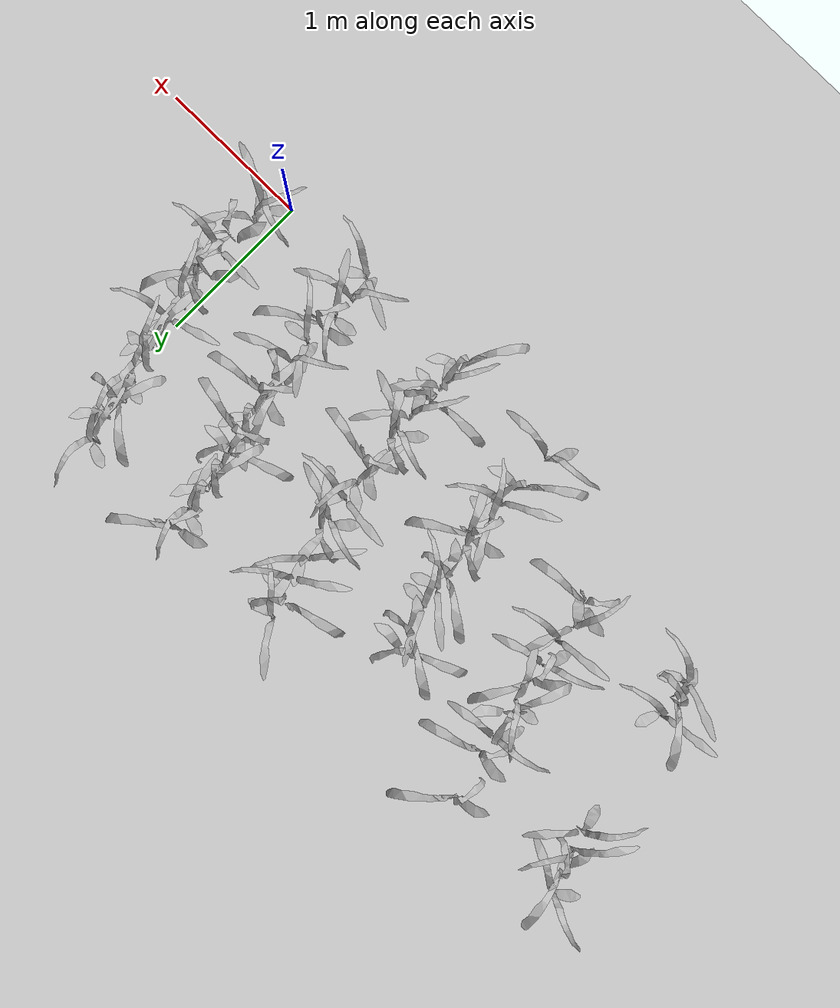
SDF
<sdf version="1.7">
 <world name="default">
  <model name="maize_02_0037">
   <pose>-3.66027 0.410487 -0.000245 1.4e-05 -1.2e-05 -1.38058</pose>
   <link name="maize_02_link">
    <inertial>
     <pose>0 0 0.01 0 -0 0</pose>
     <mass>0.3</mass>
     <inertia>
      <ixx>0.00334167</ixx>
      <ixy>0</ixy>
      <ixz>0</ixz>
      <iyy>0.00334167</iyy>
      <iyz>0</iyz>
      <izz>1.66667e-05</izz>
     </inertia>
     <pose>0 0 0.1 0 -0 0</pose>
    </inertial>
    <visual name="visual">
     <geometry>
      <mesh><uri>model://maize_02/meshes/maize_02.dae</uri><scale>0.683166 0.683166 0.683166</scale></mesh>
     </geometry>
    </visual>
   </link>
   <static>0</static>
  </model>
  <model name="maize_01_0038">
   <pose>-3.68555 0.516604 -0 -5e-06 -2.8e-05 2.98925</pose>
   <link name="maize_01_link">
    <inertial>
     <pose>0 0 0.01 0 -0 0</pose>
     <mass>0.3</mass>
     <inertia>
      <ixx>0.00334167</ixx>
      <ixy>0</ixy>
      <ixz>0</ixz>
      <iyy>0.00334167</iyy>
      <iyz>0</iyz>
      <izz>1.66667e-05</izz>
     </inertia>
     <pose>0 0 0.1 0 -0 0</pose>
    </inertial>
    <visual name="visual">
     <geometry>
      <mesh><uri>model://maize_01/meshes/maize_01.dae</uri><scale>0.683166 0.683166 0.683166</scale></mesh>
     </geometry>
    </visual>
   </link>
   <static>0</static>
  </model>
  <model name="maize_02_0039">
   <pose>-3.70169 0.643585 -0 -5e-06 -2.8e-05 -0.865449</pose>
   <link name="maize_02_link">
    <inertial>
     <pose>0 0 0.01 0 -0 0</pose>
     <mass>0.3</mass>
     <inertia>
      <ixx>0.00334167</ixx>
      <ixy>0</ixy>
      <ixz>0</ixz>
      <iyy>0.00334167</iyy>
      <iyz>0</iyz>
      <izz>1.66667e-05</izz>
     </inertia>
     <pose>0 0 0.1 0 -0 0</pose>
    </inertial>
    <visual name="visual">
     <geometry>
      <mesh><uri>model://maize_02/meshes/maize_02.dae</uri><scale>0.683166 0.683166 0.683166</scale></mesh>
     </geometry>
    </visual>
   </link>
   <static>0</static>
  </model>
  <model name="maize_02_0040">
   <pose>-3.81636 1.45517 -1e-06 6e-06 -8.3e-05 2.98124</pose>
   <link name="maize_02_link">
    <inertial>
     <pose>0 0 0.01 0 -0 0</pose>
     <mass>0.3</mass>
     <inertia>
      <ixx>0.00334167</ixx>
      <ixy>0</ixy>
      <ixz>0</ixz>
      <iyy>0.00334167</iyy>
      <iyz>0</iyz>
      <izz>1.66667e-05</izz>
     </inertia>
     <pose>0 0 0.1 0 -0 0</pose>
    </inertial>
    <visual name="visual">
     <geometry>
      <mesh><uri>model://maize_02/meshes/maize_02.dae</uri><scale>0.683166 0.683166 0.683166</scale></mesh>
     </geometry>
    </visual>
   </link>
   <static>0</static>
  </model>
  <model name="maize_02_0041">
   <pose>-3.86791 1.56843 -0 -5e-06 -2.8e-05 -0.060182</pose>
   <link name="maize_02_link">
    <inertial>
     <pose>0 0 0.01 0 -0 0</pose>
     <mass>0.3</mass>
     <inertia>
      <ixx>0.00334167</ixx>
      <ixy>0</ixy>
      <ixz>0</ixz>
      <iyy>0.00334167</iyy>
      <iyz>0</iyz>
      <izz>1.66667e-05</izz>
     </inertia>
     <pose>0 0 0.1 0 -0 0</pose>
    </inertial>
    <visual name="visual">
     <geometry>
      <mesh><uri>model://maize_02/meshes/maize_02.dae</uri><scale>0.683166 0.683166 0.683166</scale></mesh>
     </geometry>
    </visual>
   </link>
   <static>0</static>
  </model>
  <model name="maize_01_0042">
   <pose>-3.88179 1.68025 -0 5e-06 2.8e-05 2.52057</pose>
   <link name="maize_01_link">
    <inertial>
     <pose>0 0 0.01 0 -0 0</pose>
     <mass>0.3</mass>
     <inertia>
      <ixx>0.00334167</ixx>
      <ixy>0</ixy>
      <ixz>0</ixz>
      <iyy>0.00334167</iyy>
      <iyz>0</iyz>
      <izz>1.66667e-05</izz>
     </inertia>
     <pose>0 0 0.1 0 -0 0</pose>
    </inertial>
    <visual name="visual">
     <geometry>
      <mesh><uri>model://maize_01/meshes/maize_01.dae</uri><scale>0.683166 0.683166 0.683166</scale></mesh>
     </geometry>
    </visual>
   </link>
   <static>0</static>
  </model>
  <model name="maize_02_0043">
   <pose>-3.91967 1.8181 -1e-06 6e-06 -8.9e-05 1.71097</pose>
   <link name="maize_02_link">
    <inertial>
     <pose>0 0 0.01 0 -0 0</pose>
     <mass>0.3</mass>
     <inertia>
      <ixx>0.00334167</ixx>
      <ixy>0</ixy>
      <ixz>0</ixz>
      <iyy>0.00334167</iyy>
      <iyz>0</iyz>
      <izz>1.66667e-05</izz>
     </inertia>
     <pose>0 0 0.1 0 -0 0</pose>
    </inertial>
    <visual name="visual">
     <geometry>
      <mesh><uri>model://maize_02/meshes/maize_02.dae</uri><scale>0.683166 0.683166 0.683166</scale></mesh>
     </geometry>
    </visual>
   </link>
   <static>0</static>
  </model>
  <model name="maize_01_0093">
   <pose>-2.93056 0.493052 -0 2.8e-05 5e-06 0.88541</pose>
   <link name="maize_01_link">
    <inertial>
     <pose>0 0 0.01 0 -0 0</pose>
     <mass>0.3</mass>
     <inertia>
      <ixx>0.00334167</ixx>
      <ixy>0</ixy>
      <ixz>0</ixz>
      <iyy>0.00334167</iyy>
      <iyz>0</iyz>
      <izz>1.66667e-05</izz>
     </inertia>
     <pose>0 0 0.1 0 -0 0</pose>
    </inertial>
    <visual name="visual">
     <geometry>
      <mesh><uri>model://maize_01/meshes/maize_01.dae</uri><scale>0.683166 0.683166 0.683166</scale></mesh>
     </geometry>
    </visual>
   </link>
   <static>0</static>
  </model>
  <model name="maize_02_0094">
   <pose>-2.96289 0.639365 -0 -5e-06 2.8e-05 -2.89464</pose>
   <link name="maize_02_link">
    <inertial>
     <pose>0 0 0.01 0 -0 0</pose>
     <mass>0.3</mass>
     <inertia>
      <ixx>0.00334167</ixx>
      <ixy>0</ixy>
      <ixz>0</ixz>
      <iyy>0.00334167</iyy>
      <iyz>0</iyz>
      <izz>1.66667e-05</izz>
     </inertia>
     <pose>0 0 0.1 0 -0 0</pose>
    </inertial>
    <visual name="visual">
     <geometry>
      <mesh><uri>model://maize_02/meshes/maize_02.dae</uri><scale>0.683166 0.683166 0.683166</scale></mesh>
     </geometry>
    </visual>
   </link>
   <static>0</static>
  </model>
  <model name="maize_02_0095">
   <pose>-2.95871 0.760134 1e-06 3e-06 0.000156 -0.87129</pose>
   <link name="maize_02_link">
    <inertial>
     <pose>0 0 0.01 0 -0 0</pose>
     <mass>0.3</mass>
     <inertia>
      <ixx>0.00334167</ixx>
      <ixy>0</ixy>
      <ixz>0</ixz>
      <iyy>0.00334167</iyy>
      <iyz>0</iyz>
      <izz>1.66667e-05</izz>
     </inertia>
     <pose>0 0 0.1 0 -0 0</pose>
    </inertial>
    <visual name="visual">
     <geometry>
      <mesh><uri>model://maize_02/meshes/maize_02.dae</uri><scale>0.683166 0.683166 0.683166</scale></mesh>
     </geometry>
    </visual>
   </link>
   <static>0</static>
  </model>
  <model name="maize_02_0096">
   <pose>-2.99314 0.916088 -1e-06 8.9e-05 -6e-06 2.45607</pose>
   <link name="maize_02_link">
    <inertial>
     <pose>0 0 0.01 0 -0 0</pose>
     <mass>0.3</mass>
     <inertia>
      <ixx>0.00334167</ixx>
      <ixy>0</ixy>
      <ixz>0</ixz>
      <iyy>0.00334167</iyy>
      <iyz>0</iyz>
      <izz>1.66667e-05</izz>
     </inertia>
     <pose>0 0 0.1 0 -0 0</pose>
    </inertial>
    <visual name="visual">
     <geometry>
      <mesh><uri>model://maize_02/meshes/maize_02.dae</uri><scale>0.683166 0.683166 0.683166</scale></mesh>
     </geometry>
    </visual>
   </link>
   <static>0</static>
  </model>
  <model name="maize_01_0097">
   <pose>-3.02066 1.01691 -1e-06 8.9e-05 6e-06 1.8454</pose>
   <link name="maize_01_link">
    <inertial>
     <pose>0 0 0.01 0 -0 0</pose>
     <mass>0.3</mass>
     <inertia>
      <ixx>0.00334167</ixx>
      <ixy>0</ixy>
      <ixz>0</ixz>
      <iyy>0.00334167</iyy>
      <iyz>0</iyz>
      <izz>1.66667e-05</izz>
     </inertia>
     <pose>0 0 0.1 0 -0 0</pose>
    </inertial>
    <visual name="visual">
     <geometry>
      <mesh><uri>model://maize_01/meshes/maize_01.dae</uri><scale>0.683166 0.683166 0.683166</scale></mesh>
     </geometry>
    </visual>
   </link>
   <static>0</static>
  </model>
  <model name="maize_02_0098">
   <pose>-3.02673 1.17492 -1e-06 6e-06 -8.3e-05 1.11427</pose>
   <link name="maize_02_link">
    <inertial>
     <pose>0 0 0.01 0 -0 0</pose>
     <mass>0.3</mass>
     <inertia>
      <ixx>0.00334167</ixx>
      <ixy>0</ixy>
      <ixz>0</ixz>
      <iyy>0.00334167</iyy>
      <iyz>0</iyz>
      <izz>1.66667e-05</izz>
     </inertia>
     <pose>0 0 0.1 0 -0 0</pose>
    </inertial>
    <visual name="visual">
     <geometry>
      <mesh><uri>model://maize_02/meshes/maize_02.dae</uri><scale>0.683166 0.683166 0.683166</scale></mesh>
     </geometry>
    </visual>
   </link>
   <static>0</static>
  </model>
  <model name="maize_01_0099">
   <pose>-3.03337 1.28259 -0.000245 -1.2e-05 1.4e-05 -1.16432</pose>
   <link name="maize_01_link">
    <inertial>
     <pose>0 0 0.01 0 -0 0</pose>
     <mass>0.3</mass>
     <inertia>
      <ixx>0.00334167</ixx>
      <ixy>0</ixy>
      <ixz>0</ixz>
      <iyy>0.00334167</iyy>
      <iyz>0</iyz>
      <izz>1.66667e-05</izz>
     </inertia>
     <pose>0 0 0.1 0 -0 0</pose>
    </inertial>
    <visual name="visual">
     <geometry>
      <mesh><uri>model://maize_01/meshes/maize_01.dae</uri><scale>0.683166 0.683166 0.683166</scale></mesh>
     </geometry>
    </visual>
   </link>
   <static>0</static>
  </model>
  <model name="maize_02_0100">
   <pose>-3.08329 1.42152 -0 -5e-06 -2.8e-05 2.30613</pose>
   <link name="maize_02_link">
    <inertial>
     <pose>0 0 0.01 0 -0 0</pose>
     <mass>0.3</mass>
     <inertia>
      <ixx>0.00334167</ixx>
      <ixy>0</ixy>
      <ixz>0</ixz>
      <iyy>0.00334167</iyy>
      <iyz>0</iyz>
      <izz>1.66667e-05</izz>
     </inertia>
     <pose>0 0 0.1 0 -0 0</pose>
    </inertial>
    <visual name="visual">
     <geometry>
      <mesh><uri>model://maize_02/meshes/maize_02.dae</uri><scale>0.683166 0.683166 0.683166</scale></mesh>
     </geometry>
    </visual>
   </link>
   <static>0</static>
  </model>
  <model name="maize_01_0101">
   <pose>-3.09985 1.53604 -0 2.8e-05 5e-06 1.07932</pose>
   <link name="maize_01_link">
    <inertial>
     <pose>0 0 0.01 0 -0 0</pose>
     <mass>0.3</mass>
     <inertia>
      <ixx>0.00334167</ixx>
      <ixy>0</ixy>
      <ixz>0</ixz>
      <iyy>0.00334167</iyy>
      <iyz>0</iyz>
      <izz>1.66667e-05</izz>
     </inertia>
     <pose>0 0 0.1 0 -0 0</pose>
    </inertial>
    <visual name="visual">
     <geometry>
      <mesh><uri>model://maize_01/meshes/maize_01.dae</uri><scale>0.683166 0.683166 0.683166</scale></mesh>
     </geometry>
    </visual>
   </link>
   <static>0</static>
  </model>
  <model name="maize_01_0102">
   <pose>-3.1717 1.82014 -1e-06 6e-06 -7.9e-05 1.47643</pose>
   <link name="maize_01_link">
    <inertial>
     <pose>0 0 0.01 0 -0 0</pose>
     <mass>0.3</mass>
     <inertia>
      <ixx>0.00334167</ixx>
      <ixy>0</ixy>
      <ixz>0</ixz>
      <iyy>0.00334167</iyy>
      <iyz>0</iyz>
      <izz>1.66667e-05</izz>
     </inertia>
     <pose>0 0 0.1 0 -0 0</pose>
    </inertial>
    <visual name="visual">
     <geometry>
      <mesh><uri>model://maize_01/meshes/maize_01.dae</uri><scale>0.683166 0.683166 0.683166</scale></mesh>
     </geometry>
    </visual>
   </link>
   <static>0</static>
  </model>
  <model name="maize_02_0143">
   <pose>-2.16256 0.024378 -0 -5e-06 -2.8e-05 2.18611</pose>
   <link name="maize_02_link">
    <inertial>
     <pose>0 0 0.01 0 -0 0</pose>
     <mass>0.3</mass>
     <inertia>
      <ixx>0.00334167</ixx>
      <ixy>0</ixy>
      <ixz>0</ixz>
      <iyy>0.00334167</iyy>
      <iyz>0</iyz>
      <izz>1.66667e-05</izz>
     </inertia>
     <pose>0 0 0.1 0 -0 0</pose>
    </inertial>
    <visual name="visual">
     <geometry>
      <mesh><uri>model://maize_02/meshes/maize_02.dae</uri><scale>0.683166 0.683166 0.683166</scale></mesh>
     </geometry>
    </visual>
   </link>
   <static>0</static>
  </model>
  <model name="maize_01_0144">
   <pose>-2.15626 0.281954 -1e-06 -6e-06 -8.9e-05 -1.73536</pose>
   <link name="maize_01_link">
    <inertial>
     <pose>0 0 0.01 0 -0 0</pose>
     <mass>0.3</mass>
     <inertia>
      <ixx>0.00334167</ixx>
      <ixy>0</ixy>
      <ixz>0</ixz>
      <iyy>0.00334167</iyy>
      <iyz>0</iyz>
      <izz>1.66667e-05</izz>
     </inertia>
     <pose>0 0 0.1 0 -0 0</pose>
    </inertial>
    <visual name="visual">
     <geometry>
      <mesh><uri>model://maize_01/meshes/maize_01.dae</uri><scale>0.683166 0.683166 0.683166</scale></mesh>
     </geometry>
    </visual>
   </link>
   <static>0</static>
  </model>
  <model name="maize_02_0145">
   <pose>-2.15983 0.413186 -0 -4.8e-05 6e-06 -0.513506</pose>
   <link name="maize_02_link">
    <inertial>
     <pose>0 0 0.01 0 -0 0</pose>
     <mass>0.3</mass>
     <inertia>
      <ixx>0.00334167</ixx>
      <ixy>0</ixy>
      <ixz>0</ixz>
      <iyy>0.00334167</iyy>
      <iyz>0</iyz>
      <izz>1.66667e-05</izz>
     </inertia>
     <pose>0 0 0.1 0 -0 0</pose>
    </inertial>
    <visual name="visual">
     <geometry>
      <mesh><uri>model://maize_02/meshes/maize_02.dae</uri><scale>0.683166 0.683166 0.683166</scale></mesh>
     </geometry>
    </visual>
   </link>
   <static>0</static>
  </model>
  <model name="maize_02_0146">
   <pose>-2.17793 0.537337 1e-06 -0.000156 3e-06 -2.04433</pose>
   <link name="maize_02_link">
    <inertial>
     <pose>0 0 0.01 0 -0 0</pose>
     <mass>0.3</mass>
     <inertia>
      <ixx>0.00334167</ixx>
      <ixy>0</ixy>
      <ixz>0</ixz>
      <iyy>0.00334167</iyy>
      <iyz>0</iyz>
      <izz>1.66667e-05</izz>
     </inertia>
     <pose>0 0 0.1 0 -0 0</pose>
    </inertial>
    <visual name="visual">
     <geometry>
      <mesh><uri>model://maize_02/meshes/maize_02.dae</uri><scale>0.683166 0.683166 0.683166</scale></mesh>
     </geometry>
    </visual>
   </link>
   <static>0</static>
  </model>
  <model name="maize_01_0147">
   <pose>-2.1831 0.662623 -0.000245 1.2e-05 -1.4e-05 1.36303</pose>
   <link name="maize_01_link">
    <inertial>
     <pose>0 0 0.01 0 -0 0</pose>
     <mass>0.3</mass>
     <inertia>
      <ixx>0.00334167</ixx>
      <ixy>0</ixy>
      <ixz>0</ixz>
      <iyy>0.00334167</iyy>
      <iyz>0</iyz>
      <izz>1.66667e-05</izz>
     </inertia>
     <pose>0 0 0.1 0 -0 0</pose>
    </inertial>
    <visual name="visual">
     <geometry>
      <mesh><uri>model://maize_01/meshes/maize_01.dae</uri><scale>0.683166 0.683166 0.683166</scale></mesh>
     </geometry>
    </visual>
   </link>
   <static>0</static>
  </model>
  <model name="maize_01_0148">
   <pose>-2.20458 0.781522 1e-06 -3e-06 -0.000156 -0.322041</pose>
   <link name="maize_01_link">
    <inertial>
     <pose>0 0 0.01 0 -0 0</pose>
     <mass>0.3</mass>
     <inertia>
      <ixx>0.00334167</ixx>
      <ixy>0</ixy>
      <ixz>0</ixz>
      <iyy>0.00334167</iyy>
      <iyz>0</iyz>
      <izz>1.66667e-05</izz>
     </inertia>
     <pose>0 0 0.1 0 -0 0</pose>
    </inertial>
    <visual name="visual">
     <geometry>
      <mesh><uri>model://maize_01/meshes/maize_01.dae</uri><scale>0.683166 0.683166 0.683166</scale></mesh>
     </geometry>
    </visual>
   </link>
   <static>0</static>
  </model>
  <model name="maize_01_0149">
   <pose>-2.21857 0.932793 -0.000245 1.4e-05 -1.2e-05 -2.96804</pose>
   <link name="maize_01_link">
    <inertial>
     <pose>0 0 0.01 0 -0 0</pose>
     <mass>0.3</mass>
     <inertia>
      <ixx>0.00334167</ixx>
      <ixy>0</ixy>
      <ixz>0</ixz>
      <iyy>0.00334167</iyy>
      <iyz>0</iyz>
      <izz>1.66667e-05</izz>
     </inertia>
     <pose>0 0 0.1 0 -0 0</pose>
    </inertial>
    <visual name="visual">
     <geometry>
      <mesh><uri>model://maize_01/meshes/maize_01.dae</uri><scale>0.683166 0.683166 0.683166</scale></mesh>
     </geometry>
    </visual>
   </link>
   <static>0</static>
  </model>
  <model name="maize_02_0150">
   <pose>-2.24388 1.0459 -1e-06 -6e-06 8.9e-05 -1.68531</pose>
   <link name="maize_02_link">
    <inertial>
     <pose>0 0 0.01 0 -0 0</pose>
     <mass>0.3</mass>
     <inertia>
      <ixx>0.00334167</ixx>
      <ixy>0</ixy>
      <ixz>0</ixz>
      <iyy>0.00334167</iyy>
      <iyz>0</iyz>
      <izz>1.66667e-05</izz>
     </inertia>
     <pose>0 0 0.1 0 -0 0</pose>
    </inertial>
    <visual name="visual">
     <geometry>
      <mesh><uri>model://maize_02/meshes/maize_02.dae</uri><scale>0.683166 0.683166 0.683166</scale></mesh>
     </geometry>
    </visual>
   </link>
   <static>0</static>
  </model>
  <model name="maize_02_0151">
   <pose>-2.25707 1.17896 -1e-06 6e-06 7.9e-05 -2.07257</pose>
   <link name="maize_02_link">
    <inertial>
     <pose>0 0 0.01 0 -0 0</pose>
     <mass>0.3</mass>
     <inertia>
      <ixx>0.00334167</ixx>
      <ixy>0</ixy>
      <ixz>0</ixz>
      <iyy>0.00334167</iyy>
      <iyz>0</iyz>
      <izz>1.66667e-05</izz>
     </inertia>
     <pose>0 0 0.1 0 -0 0</pose>
    </inertial>
    <visual name="visual">
     <geometry>
      <mesh><uri>model://maize_02/meshes/maize_02.dae</uri><scale>0.683166 0.683166 0.683166</scale></mesh>
     </geometry>
    </visual>
   </link>
   <static>0</static>
  </model>
  <model name="maize_01_0152">
   <pose>-2.29463 1.32279 1e-06 -0.000156 3e-06 -2.91684</pose>
   <link name="maize_01_link">
    <inertial>
     <pose>0 0 0.01 0 -0 0</pose>
     <mass>0.3</mass>
     <inertia>
      <ixx>0.00334167</ixx>
      <ixy>0</ixy>
      <ixz>0</ixz>
      <iyy>0.00334167</iyy>
      <iyz>0</iyz>
      <izz>1.66667e-05</izz>
     </inertia>
     <pose>0 0 0.1 0 -0 0</pose>
    </inertial>
    <visual name="visual">
     <geometry>
      <mesh><uri>model://maize_01/meshes/maize_01.dae</uri><scale>0.683166 0.683166 0.683166</scale></mesh>
     </geometry>
    </visual>
   </link>
   <static>0</static>
  </model>
  <model name="maize_01_0153">
   <pose>-2.32665 1.4433 -0 -2.8e-05 -5e-06 -1.94214</pose>
   <link name="maize_01_link">
    <inertial>
     <pose>0 0 0.01 0 -0 0</pose>
     <mass>0.3</mass>
     <inertia>
      <ixx>0.00334167</ixx>
      <ixy>0</ixy>
      <ixz>0</ixz>
      <iyy>0.00334167</iyy>
      <iyz>0</iyz>
      <izz>1.66667e-05</izz>
     </inertia>
     <pose>0 0 0.1 0 -0 0</pose>
    </inertial>
    <visual name="visual">
     <geometry>
      <mesh><uri>model://maize_01/meshes/maize_01.dae</uri><scale>0.683166 0.683166 0.683166</scale></mesh>
     </geometry>
    </visual>
   </link>
   <static>0</static>
  </model>
  <model name="maize_01_0210">
   <pose>-1.41972 0.002456 -0 2.8e-05 5e-06 -1.34326</pose>
   <link name="maize_01_link">
    <inertial>
     <pose>0 0 0.01 0 -0 0</pose>
     <mass>0.3</mass>
     <inertia>
      <ixx>0.00334167</ixx>
      <ixy>0</ixy>
      <ixz>0</ixz>
      <iyy>0.00334167</iyy>
      <iyz>0</iyz>
      <izz>1.66667e-05</izz>
     </inertia>
     <pose>0 0 0.1 0 -0 0</pose>
    </inertial>
    <visual name="visual">
     <geometry>
      <mesh><uri>model://maize_01/meshes/maize_01.dae</uri><scale>0.683166 0.683166 0.683166</scale></mesh>
     </geometry>
    </visual>
   </link>
   <static>0</static>
  </model>
  <model name="maize_02_0211">
   <pose>-1.41599 0.168044 -0 5e-06 2.8e-05 3.12304</pose>
   <link name="maize_02_link">
    <inertial>
     <pose>0 0 0.01 0 -0 0</pose>
     <mass>0.3</mass>
     <inertia>
      <ixx>0.00334167</ixx>
      <ixy>0</ixy>
      <ixz>0</ixz>
      <iyy>0.00334167</iyy>
      <iyz>0</iyz>
      <izz>1.66667e-05</izz>
     </inertia>
     <pose>0 0 0.1 0 -0 0</pose>
    </inertial>
    <visual name="visual">
     <geometry>
      <mesh><uri>model://maize_02/meshes/maize_02.dae</uri><scale>0.683166 0.683166 0.683166</scale></mesh>
     </geometry>
    </visual>
   </link>
   <static>0</static>
  </model>
  <model name="maize_01_0212">
   <pose>-1.43218 0.270782 -1e-06 6e-06 8.6e-05 -2.32081</pose>
   <link name="maize_01_link">
    <inertial>
     <pose>0 0 0.01 0 -0 0</pose>
     <mass>0.3</mass>
     <inertia>
      <ixx>0.00334167</ixx>
      <ixy>0</ixy>
      <ixz>0</ixz>
      <iyy>0.00334167</iyy>
      <iyz>0</iyz>
      <izz>1.66667e-05</izz>
     </inertia>
     <pose>0 0 0.1 0 -0 0</pose>
    </inertial>
    <visual name="visual">
     <geometry>
      <mesh><uri>model://maize_01/meshes/maize_01.dae</uri><scale>0.683166 0.683166 0.683166</scale></mesh>
     </geometry>
    </visual>
   </link>
   <static>0</static>
  </model>
  <model name="maize_02_0213">
   <pose>-1.40939 0.423124 -0.000245 -1.4e-05 -1.2e-05 3.08653</pose>
   <link name="maize_02_link">
    <inertial>
     <pose>0 0 0.01 0 -0 0</pose>
     <mass>0.3</mass>
     <inertia>
      <ixx>0.00334167</ixx>
      <ixy>0</ixy>
      <ixz>0</ixz>
      <iyy>0.00334167</iyy>
      <iyz>0</iyz>
      <izz>1.66667e-05</izz>
     </inertia>
     <pose>0 0 0.1 0 -0 0</pose>
    </inertial>
    <visual name="visual">
     <geometry>
      <mesh><uri>model://maize_02/meshes/maize_02.dae</uri><scale>0.683166 0.683166 0.683166</scale></mesh>
     </geometry>
    </visual>
   </link>
   <static>0</static>
  </model>
  <model name="maize_02_0214">
   <pose>-1.42888 0.530303 -0 -6e-06 -4.8e-05 1.75059</pose>
   <link name="maize_02_link">
    <inertial>
     <pose>0 0 0.01 0 -0 0</pose>
     <mass>0.3</mass>
     <inertia>
      <ixx>0.00334167</ixx>
      <ixy>0</ixy>
      <ixz>0</ixz>
      <iyy>0.00334167</iyy>
      <iyz>0</iyz>
      <izz>1.66667e-05</izz>
     </inertia>
     <pose>0 0 0.1 0 -0 0</pose>
    </inertial>
    <visual name="visual">
     <geometry>
      <mesh><uri>model://maize_02/meshes/maize_02.dae</uri><scale>0.683166 0.683166 0.683166</scale></mesh>
     </geometry>
    </visual>
   </link>
   <static>0</static>
  </model>
  <model name="maize_01_0215">
   <pose>-1.46623 0.646424 -0 -5e-06 -2.8e-05 -0.19178</pose>
   <link name="maize_01_link">
    <inertial>
     <pose>0 0 0.01 0 -0 0</pose>
     <mass>0.3</mass>
     <inertia>
      <ixx>0.00334167</ixx>
      <ixy>0</ixy>
      <ixz>0</ixz>
      <iyy>0.00334167</iyy>
      <iyz>0</iyz>
      <izz>1.66667e-05</izz>
     </inertia>
     <pose>0 0 0.1 0 -0 0</pose>
    </inertial>
    <visual name="visual">
     <geometry>
      <mesh><uri>model://maize_01/meshes/maize_01.dae</uri><scale>0.683166 0.683166 0.683166</scale></mesh>
     </geometry>
    </visual>
   </link>
   <static>0</static>
  </model>
  <model name="maize_01_0216">
   <pose>-1.44909 0.80581 -0 2.8e-05 5e-06 0.599218</pose>
   <link name="maize_01_link">
    <inertial>
     <pose>0 0 0.01 0 -0 0</pose>
     <mass>0.3</mass>
     <inertia>
      <ixx>0.00334167</ixx>
      <ixy>0</ixy>
      <ixz>0</ixz>
      <iyy>0.00334167</iyy>
      <iyz>0</iyz>
      <izz>1.66667e-05</izz>
     </inertia>
     <pose>0 0 0.1 0 -0 0</pose>
    </inertial>
    <visual name="visual">
     <geometry>
      <mesh><uri>model://maize_01/meshes/maize_01.dae</uri><scale>0.683166 0.683166 0.683166</scale></mesh>
     </geometry>
    </visual>
   </link>
   <static>0</static>
  </model>
  <model name="maize_02_0217">
   <pose>-1.46583 0.91761 -0 -5e-06 -2.8e-05 0.438514</pose>
   <link name="maize_02_link">
    <inertial>
     <pose>0 0 0.01 0 -0 0</pose>
     <mass>0.3</mass>
     <inertia>
      <ixx>0.00334167</ixx>
      <ixy>0</ixy>
      <ixz>0</ixz>
      <iyy>0.00334167</iyy>
      <iyz>0</iyz>
      <izz>1.66667e-05</izz>
     </inertia>
     <pose>0 0 0.1 0 -0 0</pose>
    </inertial>
    <visual name="visual">
     <geometry>
      <mesh><uri>model://maize_02/meshes/maize_02.dae</uri><scale>0.683166 0.683166 0.683166</scale></mesh>
     </geometry>
    </visual>
   </link>
   <static>0</static>
  </model>
  <model name="maize_02_0218">
   <pose>-1.4932 1.0447 -0 -5e-06 2.8e-05 -1.08015</pose>
   <link name="maize_02_link">
    <inertial>
     <pose>0 0 0.01 0 -0 0</pose>
     <mass>0.3</mass>
     <inertia>
      <ixx>0.00334167</ixx>
      <ixy>0</ixy>
      <ixz>0</ixz>
      <iyy>0.00334167</iyy>
      <iyz>0</iyz>
      <izz>1.66667e-05</izz>
     </inertia>
     <pose>0 0 0.1 0 -0 0</pose>
    </inertial>
    <visual name="visual">
     <geometry>
      <mesh><uri>model://maize_02/meshes/maize_02.dae</uri><scale>0.683166 0.683166 0.683166</scale></mesh>
     </geometry>
    </visual>
   </link>
   <static>0</static>
  </model>
  <model name="maize_02_0219">
   <pose>-1.51101 1.18855 -0 -2.8e-05 -5e-06 1.8255</pose>
   <link name="maize_02_link">
    <inertial>
     <pose>0 0 0.01 0 -0 0</pose>
     <mass>0.3</mass>
     <inertia>
      <ixx>0.00334167</ixx>
      <ixy>0</ixy>
      <ixz>0</ixz>
      <iyy>0.00334167</iyy>
      <iyz>0</iyz>
      <izz>1.66667e-05</izz>
     </inertia>
     <pose>0 0 0.1 0 -0 0</pose>
    </inertial>
    <visual name="visual">
     <geometry>
      <mesh><uri>model://maize_02/meshes/maize_02.dae</uri><scale>0.683166 0.683166 0.683166</scale></mesh>
     </geometry>
    </visual>
   </link>
   <static>0</static>
  </model>
  <model name="maize_01_0220">
   <pose>-1.53632 1.30288 -0 -2.8e-05 5e-06 -0.16564</pose>
   <link name="maize_01_link">
    <inertial>
     <pose>0 0 0.01 0 -0 0</pose>
     <mass>0.3</mass>
     <inertia>
      <ixx>0.00334167</ixx>
      <ixy>0</ixy>
      <ixz>0</ixz>
      <iyy>0.00334167</iyy>
      <iyz>0</iyz>
      <izz>1.66667e-05</izz>
     </inertia>
     <pose>0 0 0.1 0 -0 0</pose>
    </inertial>
    <visual name="visual">
     <geometry>
      <mesh><uri>model://maize_01/meshes/maize_01.dae</uri><scale>0.683166 0.683166 0.683166</scale></mesh>
     </geometry>
    </visual>
   </link>
   <static>0</static>
  </model>
  <model name="maize_02_0221">
   <pose>-1.57488 1.44692 -0 6e-06 4.8e-05 -0.056055</pose>
   <link name="maize_02_link">
    <inertial>
     <pose>0 0 0.01 0 -0 0</pose>
     <mass>0.3</mass>
     <inertia>
      <ixx>0.00334167</ixx>
      <ixy>0</ixy>
      <ixz>0</ixz>
      <iyy>0.00334167</iyy>
      <iyz>0</iyz>
      <izz>1.66667e-05</izz>
     </inertia>
     <pose>0 0 0.1 0 -0 0</pose>
    </inertial>
    <visual name="visual">
     <geometry>
      <mesh><uri>model://maize_02/meshes/maize_02.dae</uri><scale>0.683166 0.683166 0.683166</scale></mesh>
     </geometry>
    </visual>
   </link>
   <static>0</static>
  </model>
  <model name="maize_02_0222">
   <pose>-1.59857 1.58583 1e-06 0.000156 -3e-06 -0.372372</pose>
   <link name="maize_02_link">
    <inertial>
     <pose>0 0 0.01 0 -0 0</pose>
     <mass>0.3</mass>
     <inertia>
      <ixx>0.00334167</ixx>
      <ixy>0</ixy>
      <ixz>0</ixz>
      <iyy>0.00334167</iyy>
      <iyz>0</iyz>
      <izz>1.66667e-05</izz>
     </inertia>
     <pose>0 0 0.1 0 -0 0</pose>
    </inertial>
    <visual name="visual">
     <geometry>
      <mesh><uri>model://maize_02/meshes/maize_02.dae</uri><scale>0.683166 0.683166 0.683166</scale></mesh>
     </geometry>
    </visual>
   </link>
   <static>0</static>
  </model>
  <model name="maize_01_0223">
   <pose>-1.63715 1.72 -0 5e-06 -2.8e-05 -2.10746</pose>
   <link name="maize_01_link">
    <inertial>
     <pose>0 0 0.01 0 -0 0</pose>
     <mass>0.3</mass>
     <inertia>
      <ixx>0.00334167</ixx>
      <ixy>0</ixy>
      <ixz>0</ixz>
      <iyy>0.00334167</iyy>
      <iyz>0</iyz>
      <izz>1.66667e-05</izz>
     </inertia>
     <pose>0 0 0.1 0 -0 0</pose>
    </inertial>
    <visual name="visual">
     <geometry>
      <mesh><uri>model://maize_01/meshes/maize_01.dae</uri><scale>0.683166 0.683166 0.683166</scale></mesh>
     </geometry>
    </visual>
   </link>
   <static>0</static>
  </model>
  <model name="maize_02_0224">
   <pose>-1.67127 1.84173 1e-06 -0.000156 3e-06 -1.83994</pose>
   <link name="maize_02_link">
    <inertial>
     <pose>0 0 0.01 0 -0 0</pose>
     <mass>0.3</mass>
     <inertia>
      <ixx>0.00334167</ixx>
      <ixy>0</ixy>
      <ixz>0</ixz>
      <iyy>0.00334167</iyy>
      <iyz>0</iyz>
      <izz>1.66667e-05</izz>
     </inertia>
     <pose>0 0 0.1 0 -0 0</pose>
    </inertial>
    <visual name="visual">
     <geometry>
      <mesh><uri>model://maize_02/meshes/maize_02.dae</uri><scale>0.683166 0.683166 0.683166</scale></mesh>
     </geometry>
    </visual>
   </link>
   <static>0</static>
  </model>
  <model name="maize_02_0287">
   <pose>-0.660084 0.016028 -0 -2.8e-05 5e-06 -1.44481</pose>
   <link name="maize_02_link">
    <inertial>
     <pose>0 0 0.01 0 -0 0</pose>
     <mass>0.3</mass>
     <inertia>
      <ixx>0.00334167</ixx>
      <ixy>0</ixy>
      <ixz>0</ixz>
      <iyy>0.00334167</iyy>
      <iyz>0</iyz>
      <izz>1.66667e-05</izz>
     </inertia>
     <pose>0 0 0.1 0 -0 0</pose>
    </inertial>
    <visual name="visual">
     <geometry>
      <mesh><uri>model://maize_02/meshes/maize_02.dae</uri><scale>0.683166 0.683166 0.683166</scale></mesh>
     </geometry>
    </visual>
   </link>
   <static>0</static>
  </model>
  <model name="maize_02_0288">
   <pose>-0.666898 0.150648 -0 4.8e-05 6e-06 2.61925</pose>
   <link name="maize_02_link">
    <inertial>
     <pose>0 0 0.01 0 -0 0</pose>
     <mass>0.3</mass>
     <inertia>
      <ixx>0.00334167</ixx>
      <ixy>0</ixy>
      <ixz>0</ixz>
      <iyy>0.00334167</iyy>
      <iyz>0</iyz>
      <izz>1.66667e-05</izz>
     </inertia>
     <pose>0 0 0.1 0 -0 0</pose>
    </inertial>
    <visual name="visual">
     <geometry>
      <mesh><uri>model://maize_02/meshes/maize_02.dae</uri><scale>0.683166 0.683166 0.683166</scale></mesh>
     </geometry>
    </visual>
   </link>
   <static>0</static>
  </model>
  <model name="maize_02_0289">
   <pose>-0.670414 0.294346 1e-06 -3e-06 0.000156 1.15714</pose>
   <link name="maize_02_link">
    <inertial>
     <pose>0 0 0.01 0 -0 0</pose>
     <mass>0.3</mass>
     <inertia>
      <ixx>0.00334167</ixx>
      <ixy>0</ixy>
      <ixz>0</ixz>
      <iyy>0.00334167</iyy>
      <iyz>0</iyz>
      <izz>1.66667e-05</izz>
     </inertia>
     <pose>0 0 0.1 0 -0 0</pose>
    </inertial>
    <visual name="visual">
     <geometry>
      <mesh><uri>model://maize_02/meshes/maize_02.dae</uri><scale>0.683166 0.683166 0.683166</scale></mesh>
     </geometry>
    </visual>
   </link>
   <static>0</static>
  </model>
  <model name="maize_01_0290">
   <pose>-0.668851 0.393497 -1e-06 -8.3e-05 6e-06 1.4094</pose>
   <link name="maize_01_link">
    <inertial>
     <pose>0 0 0.01 0 -0 0</pose>
     <mass>0.3</mass>
     <inertia>
      <ixx>0.00334167</ixx>
      <ixy>0</ixy>
      <ixz>0</ixz>
      <iyy>0.00334167</iyy>
      <iyz>0</iyz>
      <izz>1.66667e-05</izz>
     </inertia>
     <pose>0 0 0.1 0 -0 0</pose>
    </inertial>
    <visual name="visual">
     <geometry>
      <mesh><uri>model://maize_01/meshes/maize_01.dae</uri><scale>0.683166 0.683166 0.683166</scale></mesh>
     </geometry>
    </visual>
   </link>
   <static>0</static>
  </model>
  <model name="maize_02_0291">
   <pose>-0.674447 0.539609 -0.000245 -1.2e-05 -1.4e-05 -1.90962</pose>
   <link name="maize_02_link">
    <inertial>
     <pose>0 0 0.01 0 -0 0</pose>
     <mass>0.3</mass>
     <inertia>
      <ixx>0.00334167</ixx>
      <ixy>0</ixy>
      <ixz>0</ixz>
      <iyy>0.00334167</iyy>
      <iyz>0</iyz>
      <izz>1.66667e-05</izz>
     </inertia>
     <pose>0 0 0.1 0 -0 0</pose>
    </inertial>
    <visual name="visual">
     <geometry>
      <mesh><uri>model://maize_02/meshes/maize_02.dae</uri><scale>0.683166 0.683166 0.683166</scale></mesh>
     </geometry>
    </visual>
   </link>
   <static>0</static>
  </model>
  <model name="maize_02_0292">
   <pose>-0.684537 0.672892 -0.000245 1.2e-05 1.4e-05 2.59475</pose>
   <link name="maize_02_link">
    <inertial>
     <pose>0 0 0.01 0 -0 0</pose>
     <mass>0.3</mass>
     <inertia>
      <ixx>0.00334167</ixx>
      <ixy>0</ixy>
      <ixz>0</ixz>
      <iyy>0.00334167</iyy>
      <iyz>0</iyz>
      <izz>1.66667e-05</izz>
     </inertia>
     <pose>0 0 0.1 0 -0 0</pose>
    </inertial>
    <visual name="visual">
     <geometry>
      <mesh><uri>model://maize_02/meshes/maize_02.dae</uri><scale>0.683166 0.683166 0.683166</scale></mesh>
     </geometry>
    </visual>
   </link>
   <static>0</static>
  </model>
  <model name="maize_01_0293">
   <pose>-0.726013 0.807659 -0 5e-06 -2.8e-05 2.71274</pose>
   <link name="maize_01_link">
    <inertial>
     <pose>0 0 0.01 0 -0 0</pose>
     <mass>0.3</mass>
     <inertia>
      <ixx>0.00334167</ixx>
      <ixy>0</ixy>
      <ixz>0</ixz>
      <iyy>0.00334167</iyy>
      <iyz>0</iyz>
      <izz>1.66667e-05</izz>
     </inertia>
     <pose>0 0 0.1 0 -0 0</pose>
    </inertial>
    <visual name="visual">
     <geometry>
      <mesh><uri>model://maize_01/meshes/maize_01.dae</uri><scale>0.683166 0.683166 0.683166</scale></mesh>
     </geometry>
    </visual>
   </link>
   <static>0</static>
  </model>
  <model name="maize_01_0294">
   <pose>-0.727965 0.927977 -0 5e-06 -2.8e-05 0.936146</pose>
   <link name="maize_01_link">
    <inertial>
     <pose>0 0 0.01 0 -0 0</pose>
     <mass>0.3</mass>
     <inertia>
      <ixx>0.00334167</ixx>
      <ixy>0</ixy>
      <ixz>0</ixz>
      <iyy>0.00334167</iyy>
      <iyz>0</iyz>
      <izz>1.66667e-05</izz>
     </inertia>
     <pose>0 0 0.1 0 -0 0</pose>
    </inertial>
    <visual name="visual">
     <geometry>
      <mesh><uri>model://maize_01/meshes/maize_01.dae</uri><scale>0.683166 0.683166 0.683166</scale></mesh>
     </geometry>
    </visual>
   </link>
   <static>0</static>
  </model>
  <model name="maize_01_0295">
   <pose>-0.738259 1.07283 -0.000245 1.2e-05 -1.4e-05 -0.785103</pose>
   <link name="maize_01_link">
    <inertial>
     <pose>0 0 0.01 0 -0 0</pose>
     <mass>0.3</mass>
     <inertia>
      <ixx>0.00334167</ixx>
      <ixy>0</ixy>
      <ixz>0</ixz>
      <iyy>0.00334167</iyy>
      <iyz>0</iyz>
      <izz>1.66667e-05</izz>
     </inertia>
     <pose>0 0 0.1 0 -0 0</pose>
    </inertial>
    <visual name="visual">
     <geometry>
      <mesh><uri>model://maize_01/meshes/maize_01.dae</uri><scale>0.683166 0.683166 0.683166</scale></mesh>
     </geometry>
    </visual>
   </link>
   <static>0</static>
  </model>
  <model name="maize_01_0296">
   <pose>-0.789393 1.20917 -0.000245 1.2e-05 1.4e-05 0.580431</pose>
   <link name="maize_01_link">
    <inertial>
     <pose>0 0 0.01 0 -0 0</pose>
     <mass>0.3</mass>
     <inertia>
      <ixx>0.00334167</ixx>
      <ixy>0</ixy>
      <ixz>0</ixz>
      <iyy>0.00334167</iyy>
      <iyz>0</iyz>
      <izz>1.66667e-05</izz>
     </inertia>
     <pose>0 0 0.1 0 -0 0</pose>
    </inertial>
    <visual name="visual">
     <geometry>
      <mesh><uri>model://maize_01/meshes/maize_01.dae</uri><scale>0.683166 0.683166 0.683166</scale></mesh>
     </geometry>
    </visual>
   </link>
   <static>0</static>
  </model>
  <model name="maize_01_0297">
   <pose>-0.798297 1.32401 -0 4.8e-05 -6e-06 -1.99575</pose>
   <link name="maize_01_link">
    <inertial>
     <pose>0 0 0.01 0 -0 0</pose>
     <mass>0.3</mass>
     <inertia>
      <ixx>0.00334167</ixx>
      <ixy>0</ixy>
      <ixz>0</ixz>
      <iyy>0.00334167</iyy>
      <iyz>0</iyz>
      <izz>1.66667e-05</izz>
     </inertia>
     <pose>0 0 0.1 0 -0 0</pose>
    </inertial>
    <visual name="visual">
     <geometry>
      <mesh><uri>model://maize_01/meshes/maize_01.dae</uri><scale>0.683166 0.683166 0.683166</scale></mesh>
     </geometry>
    </visual>
   </link>
   <static>0</static>
  </model>
  <model name="maize_01_0298">
   <pose>-0.831399 1.43246 -1e-06 -7.9e-05 -6e-06 -0.69033</pose>
   <link name="maize_01_link">
    <inertial>
     <pose>0 0 0.01 0 -0 0</pose>
     <mass>0.3</mass>
     <inertia>
      <ixx>0.00334167</ixx>
      <ixy>0</ixy>
      <ixz>0</ixz>
      <iyy>0.00334167</iyy>
      <iyz>0</iyz>
      <izz>1.66667e-05</izz>
     </inertia>
     <pose>0 0 0.1 0 -0 0</pose>
    </inertial>
    <visual name="visual">
     <geometry>
      <mesh><uri>model://maize_01/meshes/maize_01.dae</uri><scale>0.683166 0.683166 0.683166</scale></mesh>
     </geometry>
    </visual>
   </link>
   <static>0</static>
  </model>
  <model name="maize_01_0299">
   <pose>-0.857316 1.57262 -1e-06 -7.9e-05 -6e-06 -0.966766</pose>
   <link name="maize_01_link">
    <inertial>
     <pose>0 0 0.01 0 -0 0</pose>
     <mass>0.3</mass>
     <inertia>
      <ixx>0.00334167</ixx>
      <ixy>0</ixy>
      <ixz>0</ixz>
      <iyy>0.00334167</iyy>
      <iyz>0</iyz>
      <izz>1.66667e-05</izz>
     </inertia>
     <pose>0 0 0.1 0 -0 0</pose>
    </inertial>
    <visual name="visual">
     <geometry>
      <mesh><uri>model://maize_01/meshes/maize_01.dae</uri><scale>0.683166 0.683166 0.683166</scale></mesh>
     </geometry>
    </visual>
   </link>
   <static>0</static>
  </model>
  <model name="maize_02_0300">
   <pose>-0.867463 1.7235 -0 -6e-06 4.8e-05 0.8468</pose>
   <link name="maize_02_link">
    <inertial>
     <pose>0 0 0.01 0 -0 0</pose>
     <mass>0.3</mass>
     <inertia>
      <ixx>0.00334167</ixx>
      <ixy>0</ixy>
      <ixz>0</ixz>
      <iyy>0.00334167</iyy>
      <iyz>0</iyz>
      <izz>1.66667e-05</izz>
     </inertia>
     <pose>0 0 0.1 0 -0 0</pose>
    </inertial>
    <visual name="visual">
     <geometry>
      <mesh><uri>model://maize_02/meshes/maize_02.dae</uri><scale>0.683166 0.683166 0.683166</scale></mesh>
     </geometry>
    </visual>
   </link>
   <static>0</static>
  </model>
  <model name="maize_01_0301">
   <pose>-0.902599 1.84816 -0 -4.8e-05 -6e-06 1.44264</pose>
   <link name="maize_01_link">
    <inertial>
     <pose>0 0 0.01 0 -0 0</pose>
     <mass>0.3</mass>
     <inertia>
      <ixx>0.00334167</ixx>
      <ixy>0</ixy>
      <ixz>0</ixz>
      <iyy>0.00334167</iyy>
      <iyz>0</iyz>
      <izz>1.66667e-05</izz>
     </inertia>
     <pose>0 0 0.1 0 -0 0</pose>
    </inertial>
    <visual name="visual">
     <geometry>
      <mesh><uri>model://maize_01/meshes/maize_01.dae</uri><scale>0.683166 0.683166 0.683166</scale></mesh>
     </geometry>
    </visual>
   </link>
   <static>0</static>
  </model>
  <model name="maize_02_0362">
   <pose>0.088263 0.1287 -0 -5e-06 2.8e-05 1.77473</pose>
   <link name="maize_02_link">
    <inertial>
     <pose>0 0 0.01 0 -0 0</pose>
     <mass>0.3</mass>
     <inertia>
      <ixx>0.00334167</ixx>
      <ixy>0</ixy>
      <ixz>0</ixz>
      <iyy>0.00334167</iyy>
      <iyz>0</iyz>
      <izz>1.66667e-05</izz>
     </inertia>
     <pose>0 0 0.1 0 -0 0</pose>
    </inertial>
    <visual name="visual">
     <geometry>
      <mesh><uri>model://maize_02/meshes/maize_02.dae</uri><scale>0.683166 0.683166 0.683166</scale></mesh>
     </geometry>
    </visual>
   </link>
   <static>0</static>
  </model>
  <model name="maize_02_0363">
   <pose>0.080575 0.228252 -0 -5e-06 -2.8e-05 -3.0766</pose>
   <link name="maize_02_link">
    <inertial>
     <pose>0 0 0.01 0 -0 0</pose>
     <mass>0.3</mass>
     <inertia>
      <ixx>0.00334167</ixx>
      <ixy>0</ixy>
      <ixz>0</ixz>
      <iyy>0.00334167</iyy>
      <iyz>0</iyz>
      <izz>1.66667e-05</izz>
     </inertia>
     <pose>0 0 0.1 0 -0 0</pose>
    </inertial>
    <visual name="visual">
     <geometry>
      <mesh><uri>model://maize_02/meshes/maize_02.dae</uri><scale>0.683166 0.683166 0.683166</scale></mesh>
     </geometry>
    </visual>
   </link>
   <static>0</static>
  </model>
  <model name="maize_01_0364">
   <pose>0.093603 0.379705 -0 -5e-06 2.8e-05 2.3243</pose>
   <link name="maize_01_link">
    <inertial>
     <pose>0 0 0.01 0 -0 0</pose>
     <mass>0.3</mass>
     <inertia>
      <ixx>0.00334167</ixx>
      <ixy>0</ixy>
      <ixz>0</ixz>
      <iyy>0.00334167</iyy>
      <iyz>0</iyz>
      <izz>1.66667e-05</izz>
     </inertia>
     <pose>0 0 0.1 0 -0 0</pose>
    </inertial>
    <visual name="visual">
     <geometry>
      <mesh><uri>model://maize_01/meshes/maize_01.dae</uri><scale>0.683166 0.683166 0.683166</scale></mesh>
     </geometry>
    </visual>
   </link>
   <static>0</static>
  </model>
  <model name="maize_02_0365">
   <pose>0.072341 0.506981 -0.000245 -1.2e-05 1.4e-05 -1.01158</pose>
   <link name="maize_02_link">
    <inertial>
     <pose>0 0 0.01 0 -0 0</pose>
     <mass>0.3</mass>
     <inertia>
      <ixx>0.00334167</ixx>
      <ixy>0</ixy>
      <ixz>0</ixz>
      <iyy>0.00334167</iyy>
      <iyz>0</iyz>
      <izz>1.66667e-05</izz>
     </inertia>
     <pose>0 0 0.1 0 -0 0</pose>
    </inertial>
    <visual name="visual">
     <geometry>
      <mesh><uri>model://maize_02/meshes/maize_02.dae</uri><scale>0.683166 0.683166 0.683166</scale></mesh>
     </geometry>
    </visual>
   </link>
   <static>0</static>
  </model>
  <model name="maize_01_0366">
   <pose>0.046971 0.640654 -1e-06 -8.9e-05 -6e-06 1.86165</pose>
   <link name="maize_01_link">
    <inertial>
     <pose>0 0 0.01 0 -0 0</pose>
     <mass>0.3</mass>
     <inertia>
      <ixx>0.00334167</ixx>
      <ixy>0</ixy>
      <ixz>0</ixz>
      <iyy>0.00334167</iyy>
      <iyz>0</iyz>
      <izz>1.66667e-05</izz>
     </inertia>
     <pose>0 0 0.1 0 -0 0</pose>
    </inertial>
    <visual name="visual">
     <geometry>
      <mesh><uri>model://maize_01/meshes/maize_01.dae</uri><scale>0.683166 0.683166 0.683166</scale></mesh>
     </geometry>
    </visual>
   </link>
   <static>0</static>
  </model>
  <model name="maize_01_0367">
   <pose>0.02872 0.77959 -0.000245 -1.4e-05 -1.2e-05 -0.301726</pose>
   <link name="maize_01_link">
    <inertial>
     <pose>0 0 0.01 0 -0 0</pose>
     <mass>0.3</mass>
     <inertia>
      <ixx>0.00334167</ixx>
      <ixy>0</ixy>
      <ixz>0</ixz>
      <iyy>0.00334167</iyy>
      <iyz>0</iyz>
      <izz>1.66667e-05</izz>
     </inertia>
     <pose>0 0 0.1 0 -0 0</pose>
    </inertial>
    <visual name="visual">
     <geometry>
      <mesh><uri>model://maize_01/meshes/maize_01.dae</uri><scale>0.683166 0.683166 0.683166</scale></mesh>
     </geometry>
    </visual>
   </link>
   <static>0</static>
  </model>
  <model name="maize_02_0368">
   <pose>0.027886 0.889194 1e-06 3e-06 0.000156 -2.21408</pose>
   <link name="maize_02_link">
    <inertial>
     <pose>0 0 0.01 0 -0 0</pose>
     <mass>0.3</mass>
     <inertia>
      <ixx>0.00334167</ixx>
      <ixy>0</ixy>
      <ixz>0</ixz>
      <iyy>0.00334167</iyy>
      <iyz>0</iyz>
      <izz>1.66667e-05</izz>
     </inertia>
     <pose>0 0 0.1 0 -0 0</pose>
    </inertial>
    <visual name="visual">
     <geometry>
      <mesh><uri>model://maize_02/meshes/maize_02.dae</uri><scale>0.683166 0.683166 0.683166</scale></mesh>
     </geometry>
    </visual>
   </link>
   <static>0</static>
  </model>
  <model name="maize_02_0369">
   <pose>-0.006235 1.00893 -0 5e-06 -2.8e-05 -0.693982</pose>
   <link name="maize_02_link">
    <inertial>
     <pose>0 0 0.01 0 -0 0</pose>
     <mass>0.3</mass>
     <inertia>
      <ixx>0.00334167</ixx>
      <ixy>0</ixy>
      <ixz>0</ixz>
      <iyy>0.00334167</iyy>
      <iyz>0</iyz>
      <izz>1.66667e-05</izz>
     </inertia>
     <pose>0 0 0.1 0 -0 0</pose>
    </inertial>
    <visual name="visual">
     <geometry>
      <mesh><uri>model://maize_02/meshes/maize_02.dae</uri><scale>0.683166 0.683166 0.683166</scale></mesh>
     </geometry>
    </visual>
   </link>
   <static>0</static>
  </model>
  <model name="maize_01_0370">
   <pose>-0.027261 1.17715 1e-06 -0.000156 3e-06 -0.782089</pose>
   <link name="maize_01_link">
    <inertial>
     <pose>0 0 0.01 0 -0 0</pose>
     <mass>0.3</mass>
     <inertia>
      <ixx>0.00334167</ixx>
      <ixy>0</ixy>
      <ixz>0</ixz>
      <iyy>0.00334167</iyy>
      <iyz>0</iyz>
      <izz>1.66667e-05</izz>
     </inertia>
     <pose>0 0 0.1 0 -0 0</pose>
    </inertial>
    <visual name="visual">
     <geometry>
      <mesh><uri>model://maize_01/meshes/maize_01.dae</uri><scale>0.683166 0.683166 0.683166</scale></mesh>
     </geometry>
    </visual>
   </link>
   <static>0</static>
  </model>
  <model name="maize_02_0371">
   <pose>-0.04128 1.28331 -0 -5e-06 2.8e-05 -2.23462</pose>
   <link name="maize_02_link">
    <inertial>
     <pose>0 0 0.01 0 -0 0</pose>
     <mass>0.3</mass>
     <inertia>
      <ixx>0.00334167</ixx>
      <ixy>0</ixy>
      <ixz>0</ixz>
      <iyy>0.00334167</iyy>
      <iyz>0</iyz>
      <izz>1.66667e-05</izz>
     </inertia>
     <pose>0 0 0.1 0 -0 0</pose>
    </inertial>
    <visual name="visual">
     <geometry>
      <mesh><uri>model://maize_02/meshes/maize_02.dae</uri><scale>0.683166 0.683166 0.683166</scale></mesh>
     </geometry>
    </visual>
   </link>
   <static>0</static>
  </model>
  <model name="maize_02_0372">
   <pose>-0.067984 1.41312 -0 2.8e-05 -5e-06 0.815689</pose>
   <link name="maize_02_link">
    <inertial>
     <pose>0 0 0.01 0 -0 0</pose>
     <mass>0.3</mass>
     <inertia>
      <ixx>0.00334167</ixx>
      <ixy>0</ixy>
      <ixz>0</ixz>
      <iyy>0.00334167</iyy>
      <iyz>0</iyz>
      <izz>1.66667e-05</izz>
     </inertia>
     <pose>0 0 0.1 0 -0 0</pose>
    </inertial>
    <visual name="visual">
     <geometry>
      <mesh><uri>model://maize_02/meshes/maize_02.dae</uri><scale>0.683166 0.683166 0.683166</scale></mesh>
     </geometry>
    </visual>
   </link>
   <static>0</static>
  </model>
  <model name="maize_01_0373">
   <pose>-0.113331 1.54529 -1e-06 -8.9e-05 -6e-06 -3.03059</pose>
   <link name="maize_01_link">
    <inertial>
     <pose>0 0 0.01 0 -0 0</pose>
     <mass>0.3</mass>
     <inertia>
      <ixx>0.00334167</ixx>
      <ixy>0</ixy>
      <ixz>0</ixz>
      <iyy>0.00334167</iyy>
      <iyz>0</iyz>
      <izz>1.66667e-05</izz>
     </inertia>
     <pose>0 0 0.1 0 -0 0</pose>
    </inertial>
    <visual name="visual">
     <geometry>
      <mesh><uri>model://maize_01/meshes/maize_01.dae</uri><scale>0.683166 0.683166 0.683166</scale></mesh>
     </geometry>
    </visual>
   </link>
   <static>0</static>
  </model>
  <model name="maize_01_0374">
   <pose>-0.122837 1.67723 -1e-06 -6e-06 -8.6e-05 -1.07019</pose>
   <link name="maize_01_link">
    <inertial>
     <pose>0 0 0.01 0 -0 0</pose>
     <mass>0.3</mass>
     <inertia>
      <ixx>0.00334167</ixx>
      <ixy>0</ixy>
      <ixz>0</ixz>
      <iyy>0.00334167</iyy>
      <iyz>0</iyz>
      <izz>1.66667e-05</izz>
     </inertia>
     <pose>0 0 0.1 0 -0 0</pose>
    </inertial>
    <visual name="visual">
     <geometry>
      <mesh><uri>model://maize_01/meshes/maize_01.dae</uri><scale>0.683166 0.683166 0.683166</scale></mesh>
     </geometry>
    </visual>
   </link>
   <static>0</static>
  </model>
  <model name="maize_02_0375">
   <pose>-0.181907 1.82578 1e-06 0.000156 3e-06 0.758487</pose>
   <link name="maize_02_link">
    <inertial>
     <pose>0 0 0.01 0 -0 0</pose>
     <mass>0.3</mass>
     <inertia>
      <ixx>0.00334167</ixx>
      <ixy>0</ixy>
      <ixz>0</ixz>
      <iyy>0.00334167</iyy>
      <iyz>0</iyz>
      <izz>1.66667e-05</izz>
     </inertia>
     <pose>0 0 0.1 0 -0 0</pose>
    </inertial>
    <visual name="visual">
     <geometry>
      <mesh><uri>model://maize_02/meshes/maize_02.dae</uri><scale>0.683166 0.683166 0.683166</scale></mesh>
     </geometry>
    </visual>
   </link>
   <static>0</static>
  </model>
  <model name="ground_plane">
   <static>1</static>
   <link name="link">
    <collision name="collision">
     <geometry><plane><normal>0 0 1</normal><size>100 100</size></plane></geometry>
     <surface>
      <contact><collide_bitmask>65535</collide_bitmask></contact>
      <friction><ode><mu>100</mu><mu2>50</mu2></ode></friction>
     </surface>
    </collision>
    <visual name="visual">
     <cast_shadows>0</cast_shadows>
     <geometry><plane><normal>0 0 1</normal><size>100 100</size></plane></geometry>
     <material>
      <script><uri>file://media/materials/scripts/gazebo.material</uri><name>Gazebo/Grey</name></script>
     </material>
    </visual>
   </link>
   <pose>-13.7732 9.25996 0 0 -0 0</pose>
  </model>
 </world>
</sdf>
